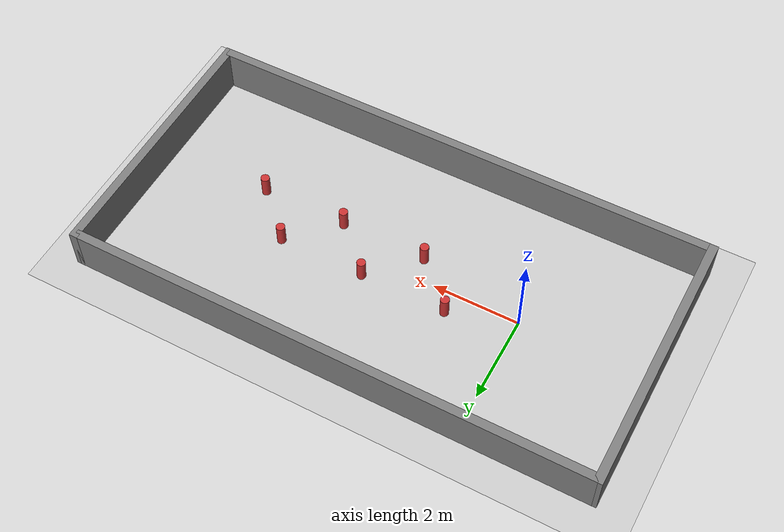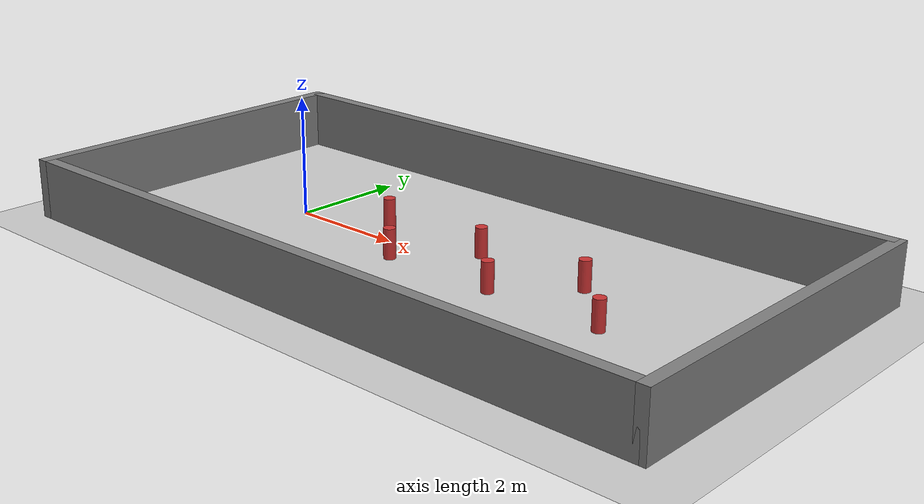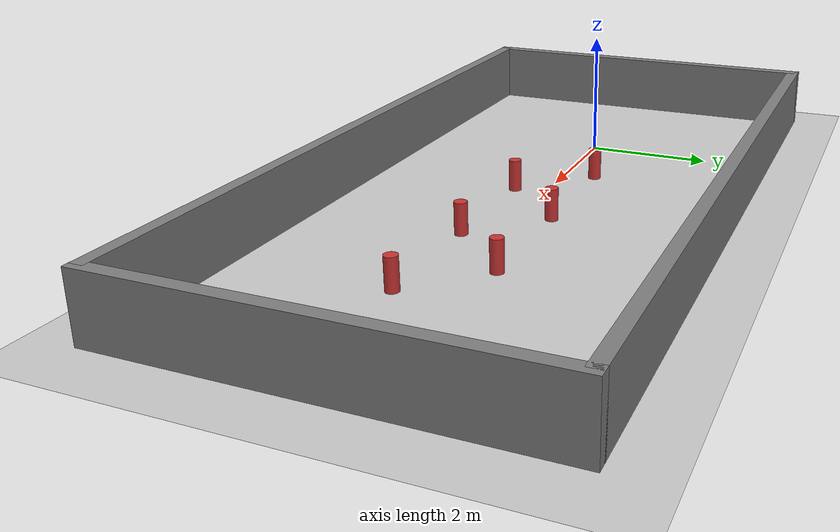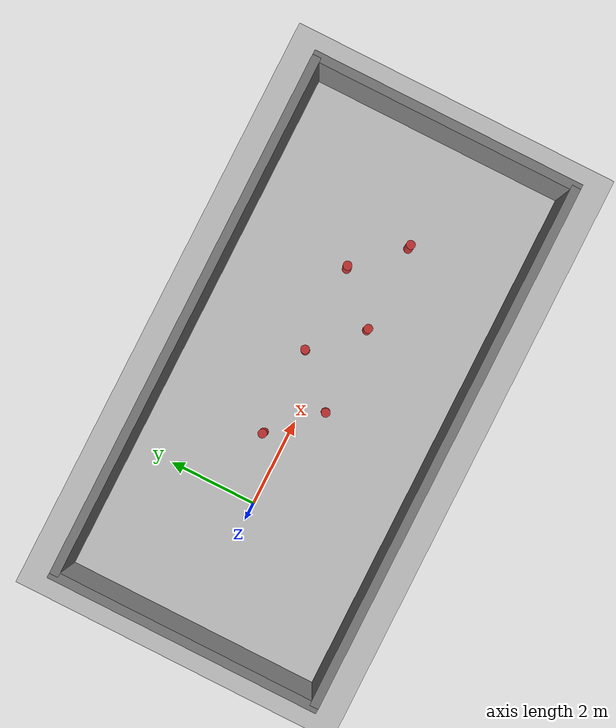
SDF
<?xml version="1.0" ?>
<sdf version="1.8">
  <world name="default">

    <!-- ── Physics ────────────────────────────────────────────────────── -->
    <!-- 1ms step = 1000Hz physics. Matches the known-good baseline; larger      -->
    <!-- steps (4ms) make pose updates burst unevenly → visible GUI stutter.      -->
    <physics name="1ms" type="ignored">
      <max_step_size>0.001</max_step_size>
      <real_time_factor>1.0</real_time_factor>
    </physics>

    <!-- ── Required plugins ──────────────────────────────────────────────────── -->
    <plugin filename="gz-sim-physics-system"
            name="gz::sim::systems::Physics"/>
    <plugin filename="gz-sim-user-commands-system"
            name="gz::sim::systems::UserCommands"/>
    <plugin filename="gz-sim-scene-broadcaster-system"
            name="gz::sim::systems::SceneBroadcaster"/>
    <plugin filename="gz-sim-sensors-system"
            name="gz::sim::systems::Sensors">
      <render_engine>ogre2</render_engine>
    </plugin>

    <!-- ── Lighting ────────────────────────────────────────────────────── -->
    <!-- cast_shadows disabled: shadow maps are expensive on Mesa D3D12 (WSL2)   -->
    <light type="directional" name="sun">
      <cast_shadows>false</cast_shadows>
      <pose>0 0 10 0 0 0</pose>
      <diffuse>0.8 0.8 0.8 1</diffuse>
      <specular>0.2 0.2 0.2 1</specular>
      <attenuation>
        <range>1000</range>
        <constant>0.9</constant>
        <linear>0.01</linear>
        <quadratic>0.001</quadratic>
      </attenuation>
      <direction>-0.5 0.1 -0.9</direction>
    </light>

    <!-- ── Ground plane ──────────────────────────────────────────────────────── -->
    <model name="ground_plane">
      <static>true</static>
      <link name="link">
        <collision name="collision">
          <geometry>
            <plane>
              <normal>0 0 1</normal>
              <size>20 20</size>
            </plane>
          </geometry>
        </collision>
        <visual name="visual">
          <geometry>
            <plane>
              <normal>0 0 1</normal>
              <size>20 20</size>
            </plane>
          </geometry>
          <material>
            <ambient>0.8 0.8 0.8 1</ambient>
            <diffuse>0.8 0.8 0.8 1</diffuse>
            <specular>0.8 0.8 0.8 1</specular>
          </material>
        </visual>
      </link>
    </model>

    <!-- ── Pillar macro (repeated 6×) ──────────────────────────────────────── -->
    <!-- radius=0.10m  height=0.50m  → visible to LiDAR, small enough to steer around -->

    <model name="pillar_1">
      <static>true</static>
      <pose>1.5 0.5 0.25 0 0 0</pose>
      <link name="link">
        <collision name="collision">
          <geometry><cylinder><radius>0.10</radius><length>0.50</length></cylinder></geometry>
        </collision>
        <visual name="visual">
          <geometry><cylinder><radius>0.10</radius><length>0.50</length></cylinder></geometry>
          <material><ambient>0.8 0.2 0.2 1</ambient><diffuse>0.8 0.2 0.2 1</diffuse></material>
        </visual>
      </link>
    </model>

    <model name="pillar_2">
      <static>true</static>
      <pose>2.5 -0.5 0.25 0 0 0</pose>
      <link name="link">
        <collision name="collision">
          <geometry><cylinder><radius>0.10</radius><length>0.50</length></cylinder></geometry>
        </collision>
        <visual name="visual">
          <geometry><cylinder><radius>0.10</radius><length>0.50</length></cylinder></geometry>
          <material><ambient>0.8 0.2 0.2 1</ambient><diffuse>0.8 0.2 0.2 1</diffuse></material>
        </visual>
      </link>
    </model>

    <model name="pillar_3">
      <static>true</static>
      <pose>3.5 0.5 0.25 0 0 0</pose>
      <link name="link">
        <collision name="collision">
          <geometry><cylinder><radius>0.10</radius><length>0.50</length></cylinder></geometry>
        </collision>
        <visual name="visual">
          <geometry><cylinder><radius>0.10</radius><length>0.50</length></cylinder></geometry>
          <material><ambient>0.8 0.2 0.2 1</ambient><diffuse>0.8 0.2 0.2 1</diffuse></material>
        </visual>
      </link>
    </model>

    <model name="pillar_4">
      <static>true</static>
      <pose>4.5 -0.5 0.25 0 0 0</pose>
      <link name="link">
        <collision name="collision">
          <geometry><cylinder><radius>0.10</radius><length>0.50</length></cylinder></geometry>
        </collision>
        <visual name="visual">
          <geometry><cylinder><radius>0.10</radius><length>0.50</length></cylinder></geometry>
          <material><ambient>0.8 0.2 0.2 1</ambient><diffuse>0.8 0.2 0.2 1</diffuse></material>
        </visual>
      </link>
    </model>

    <model name="pillar_5">
      <static>true</static>
      <pose>5.5 0.5 0.25 0 0 0</pose>
      <link name="link">
        <collision name="collision">
          <geometry><cylinder><radius>0.10</radius><length>0.50</length></cylinder></geometry>
        </collision>
        <visual name="visual">
          <geometry><cylinder><radius>0.10</radius><length>0.50</length></cylinder></geometry>
          <material><ambient>0.8 0.2 0.2 1</ambient><diffuse>0.8 0.2 0.2 1</diffuse></material>
        </visual>
      </link>
    </model>

    <model name="pillar_6">
      <static>true</static>
      <pose>6.5 -0.5 0.25 0 0 0</pose>
      <link name="link">
        <collision name="collision">
          <geometry><cylinder><radius>0.10</radius><length>0.50</length></cylinder></geometry>
        </collision>
        <visual name="visual">
          <geometry><cylinder><radius>0.10</radius><length>0.50</length></cylinder></geometry>
          <material><ambient>0.8 0.2 0.2 1</ambient><diffuse>0.8 0.2 0.2 1</diffuse></material>
        </visual>
      </link>
    </model>

    <!-- ── Enclosing Walls to Provide Geometric Features for RF2O ──────────────── -->
    <model name="wall_left">
      <static>true</static>
      <pose>3.0 3.0 0.5 0 0 0</pose>
      <link name="link">
        <collision name="collision"><geometry><box><size>12.0 0.2 1.0</size></box></geometry></collision>
        <visual name="visual"><geometry><box><size>12.0 0.2 1.0</size></box></geometry><material><ambient>0.5 0.5 0.5 1</ambient><diffuse>0.5 0.5 0.5 1</diffuse></material></visual>
      </link>
    </model>
    <model name="wall_right">
      <static>true</static>
      <pose>3.0 -3.0 0.5 0 0 0</pose>
      <link name="link">
        <collision name="collision"><geometry><box><size>12.0 0.2 1.0</size></box></geometry></collision>
        <visual name="visual"><geometry><box><size>12.0 0.2 1.0</size></box></geometry><material><ambient>0.5 0.5 0.5 1</ambient><diffuse>0.5 0.5 0.5 1</diffuse></material></visual>
      </link>
    </model>
    <model name="wall_front">
      <static>true</static>
      <pose>9.0 0.0 0.5 0 0 0</pose>
      <link name="link">
        <collision name="collision"><geometry><box><size>0.2 6.2 1.0</size></box></geometry></collision>
        <visual name="visual"><geometry><box><size>0.2 6.2 1.0</size></box></geometry><material><ambient>0.5 0.5 0.5 1</ambient><diffuse>0.5 0.5 0.5 1</diffuse></material></visual>
      </link>
    </model>
    <model name="wall_back">
      <static>true</static>
      <pose>-3.0 0.0 0.5 0 0 0</pose>
      <link name="link">
        <collision name="collision"><geometry><box><size>0.2 6.2 1.0</size></box></geometry></collision>
        <visual name="visual"><geometry><box><size>0.2 6.2 1.0</size></box></geometry><material><ambient>0.5 0.5 0.5 1</ambient><diffuse>0.5 0.5 0.5 1</diffuse></material></visual>
      </link>
    </model>

  </world>
</sdf>
